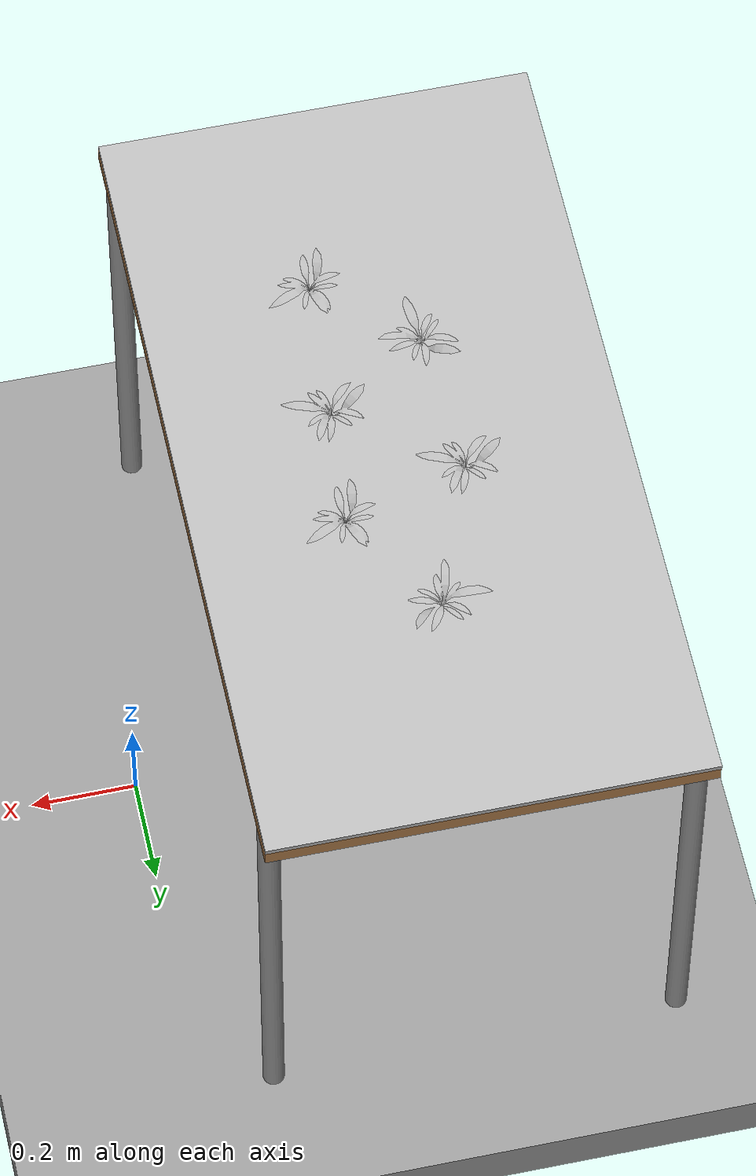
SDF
<sdf version="1.7">
 <world name="default">
  <light name="sun" type="directional">
   <pose>0 0 10 0 -0 0</pose>
   <diffuse>0.8 0.8 0.8 1</diffuse>
   <specular>0.2 0.2 0.2 1</specular>
   <attenuation>
    <range>1000</range>
    <constant>0.9</constant>
    <linear>0.01</linear>
    <quadratic>0.001</quadratic>
   </attenuation>
   <direction>-0.5 0.1 -0.9</direction>
   <spot><inner_angle>0</inner_angle><outer_angle>0</outer_angle><falloff>0</falloff></spot>
  </light>
  <model name="ground_plane">
   <static>1</static>
   <link name="link">
    <collision name="collision">
     <geometry><plane><normal>0 0 1</normal><size>100 100</size></plane></geometry>
     <surface>
      <contact><collide_bitmask>65535</collide_bitmask></contact>
      <friction><ode><mu>100</mu><mu2>50</mu2></ode></friction>
     </surface>
    </collision>
    <visual name="visual">
     <cast_shadows>0</cast_shadows>
     <geometry><plane><normal>0 0 1</normal><size>100 100</size></plane></geometry>
     <material>
      <script><uri>file://media/materials/scripts/gazebo.material</uri><name>Gazebo/Grey</name></script>
     </material>
    </visual>
   </link>
  </model>
  <gravity>0 0 -9.8</gravity>
  <magnetic_field>6e-06 2.3e-05 -4.2e-05</magnetic_field>
  <atmosphere type="adiabatic"/>
  <physics type="ode">
   <max_step_size>0.001</max_step_size>
   <real_time_factor>1</real_time_factor>
   <real_time_update_rate>1000</real_time_update_rate>
  </physics>
  <scene><ambient>0.4 0.4 0.4 1</ambient><background>0.7 0.7 0.7 1</background><shadows>1</shadows></scene>
  <spherical_coordinates>
   <surface_model>EARTH_WGS84</surface_model>
   <latitude_deg>0</latitude_deg>
   <longitude_deg>0</longitude_deg>
   <elevation>0</elevation>
   <heading_deg>0</heading_deg>
  </spherical_coordinates>
  <model name="table">
   <static>1</static>
   <link name="link">
    <collision name="surface">
     <pose>0 0 1 0 -0 0</pose>
     <geometry><box><size>1.5 0.8 0.03</size></box></geometry>
     <surface><friction><ode><mu>0.6</mu><mu2>0.6</mu2></ode></friction></surface>
    </collision>
    <visual name="visual1">
     <pose>0 0 1 0 -0 0</pose>
     <geometry><box><size>1.5 0.8 0.03</size></box></geometry>
     <material>
      <script><uri>file://media/materials/scripts/gazebo.material</uri><name>Gazebo/Wood</name></script>
     </material>
    </visual>
    <collision name="front_left_leg">
     <pose>0.68 0.38 0.5 0 -0 0</pose>
     <geometry><cylinder><radius>0.02</radius><length>1</length></cylinder></geometry>
    </collision>
    <visual name="front_left_leg">
     <pose>0.68 0.38 0.5 0 -0 0</pose>
     <geometry><cylinder><radius>0.02</radius><length>1</length></cylinder></geometry>
     <material>
      <script><uri>file://media/materials/scripts/gazebo.material</uri><name>Gazebo/Grey</name></script>
     </material>
    </visual>
    <collision name="front_right_leg">
     <pose>0.68 -0.38 0.5 0 -0 0</pose>
     <geometry><cylinder><radius>0.02</radius><length>1</length></cylinder></geometry>
    </collision>
    <visual name="front_right_leg">
     <pose>0.68 -0.38 0.5 0 -0 0</pose>
     <geometry><cylinder><radius>0.02</radius><length>1</length></cylinder></geometry>
     <material>
      <script><uri>file://media/materials/scripts/gazebo.material</uri><name>Gazebo/Grey</name></script>
     </material>
    </visual>
    <collision name="back_right_leg">
     <pose>-0.68 -0.38 0.5 0 -0 0</pose>
     <geometry><cylinder><radius>0.02</radius><length>1</length></cylinder></geometry>
    </collision>
    <visual name="back_right_leg">
     <pose>-0.68 -0.38 0.5 0 -0 0</pose>
     <geometry><cylinder><radius>0.02</radius><length>1</length></cylinder></geometry>
     <material>
      <script><uri>file://media/materials/scripts/gazebo.material</uri><name>Gazebo/Grey</name></script>
     </material>
    </visual>
    <collision name="back_left_leg">
     <pose>-0.68 0.38 0.5 0 -0 0</pose>
     <geometry><cylinder><radius>0.02</radius><length>1</length></cylinder></geometry>
    </collision>
    <visual name="back_left_leg">
     <pose>-0.68 0.38 0.5 0 -0 0</pose>
     <geometry><cylinder><radius>0.02</radius><length>1</length></cylinder></geometry>
     <material>
      <script><uri>file://media/materials/scripts/gazebo.material</uri><name>Gazebo/Grey</name></script>
     </material>
    </visual>
   </link>
   <pose>-0.507405 -0 0 0 -0 1.57</pose>
  </model>
  <model name="ground_plane_0">
   <static>1</static>
   <link name="link">
    <collision name="collision">
     <geometry><plane><normal>0 0 1</normal><size>100 100</size></plane></geometry>
     <surface>
      <contact><collide_bitmask>65535</collide_bitmask></contact>
      <friction><ode><mu>100</mu><mu2>50</mu2></ode></friction>
     </surface>
    </collision>
    <visual name="visual">
     <cast_shadows>0</cast_shadows>
     <geometry><plane><normal>0 0 1</normal><size>100 100</size></plane></geometry>
     <material>
      <script><uri>file://media/materials/scripts/gazebo.material</uri><name>Gazebo/Grey</name></script>
     </material>
    </visual>
   </link>
   <pose>1.1453 1.4571 0 0 -0 0</pose>
  </model>
  <model name="grass">
   <static>0</static>
   <link name="link">
    <collision name="collision">
     <geometry><mesh><uri>model://grass/meshes/grass.obj</uri></mesh></geometry>
     <surface><friction><ode><mu>0.2</mu><mu2>0.2</mu2></ode></friction></surface>
    </collision>
    <inertial>
     <mass>1</mass>
     <inertia><ixx>1</ixx><ixy>0</ixy><ixz>0</ixz><iyy>1</iyy><iyz>0</iyz><izz>1</izz></inertia>
    </inertial>
    <visual name="visual_abcedf">
     <geometry><mesh><uri>model://grass/meshes/grass.obj</uri></mesh></geometry>
     <material>
      <script>
       <uri>model://grass/materials/scripts</uri>
       <uri>model://grass/materials/textures</uri>
       <name>grass/Diffuse</name>
      </script>
     </material>
    </visual>
   </link>
   <pose>-0.508321 0.000353 1.02 1e-06 -1e-06 1.57006</pose>
  </model>
  <model name="unknown_weed">
   <static>0</static>
   <link name="link">
    <inertial>
     <mass>0.1</mass>
     <inertia>
      <ixx>6.58333e-05</ixx>
      <ixy>0</ixy>
      <ixz>0</ixz>
      <iyy>6.58333e-05</iyy>
      <iyz>0</iyz>
      <izz>0.000125</izz>
     </inertia>
     <pose>0 0 0.005 0 -0 0</pose>
    </inertial>
    <collision name="collision_leaves">
     <geometry><mesh><uri>model://unknown_weed/meshes/unknown_weed.dae</uri></mesh></geometry>
     <surface><friction><ode><mu>10</mu><mu2>10</mu2></ode></friction></surface>
    </collision>
    <collision name="collision_stem">
     <geometry><cylinder><radius>0.03</radius><length>0.005</length></cylinder></geometry>
     <surface><friction><ode><mu>10</mu><mu2>10</mu2></ode></friction></surface>
    </collision>
    <visual name="visual">
     <geometry><mesh><uri>model://unknown_weed/meshes/unknown_weed.dae</uri></mesh></geometry>
     <material>
      <script>
       <uri>model://unknown_weed/materials/scripts/</uri>
       <uri>model://unknown_weed/materials/textures/</uri>
       <name>unknown_weed_leaf</name>
      </script>
     </material>
    </visual>
   </link>
   <pose>-0.609598 0.068309 1.0275 2e-05 -1.3e-05 -0.48959</pose>
  </model>
  <model name="unknown_weed_0">
   <static>0</static>
   <link name="link">
    <inertial>
     <mass>0.1</mass>
     <inertia>
      <ixx>6.58333e-05</ixx>
      <ixy>0</ixy>
      <ixz>0</ixz>
      <iyy>6.58333e-05</iyy>
      <iyz>0</iyz>
      <izz>0.000125</izz>
     </inertia>
     <pose>0 0 0.005 0 -0 0</pose>
    </inertial>
    <collision name="collision_leaves">
     <geometry><mesh><uri>model://unknown_weed/meshes/unknown_weed.dae</uri></mesh></geometry>
     <surface><friction><ode><mu>10</mu><mu2>10</mu2></ode></friction></surface>
    </collision>
    <collision name="collision_stem">
     <geometry><cylinder><radius>0.03</radius><length>0.005</length></cylinder></geometry>
     <surface><friction><ode><mu>10</mu><mu2>10</mu2></ode></friction></surface>
    </collision>
    <visual name="visual">
     <geometry><mesh><uri>model://unknown_weed/meshes/unknown_weed.dae</uri></mesh></geometry>
     <material>
      <script>
       <uri>model://unknown_weed/materials/scripts/</uri>
       <uri>model://unknown_weed/materials/textures/</uri>
       <name>unknown_weed_leaf</name>
      </script>
     </material>
    </visual>
   </link>
   <pose>-0.418516 -0.35709 1.0275 5.8e-05 1.2e-05 0.284861</pose>
  </model>
  <model name="unknown_weed_1">
   <static>0</static>
   <link name="link">
    <inertial>
     <mass>0.1</mass>
     <inertia>
      <ixx>6.58333e-05</ixx>
      <ixy>0</ixy>
      <ixz>0</ixz>
      <iyy>6.58333e-05</iyy>
      <iyz>0</iyz>
      <izz>0.000125</izz>
     </inertia>
     <pose>0 0 0.005 0 -0 0</pose>
    </inertial>
    <collision name="collision_leaves">
     <geometry><mesh><uri>model://unknown_weed/meshes/unknown_weed.dae</uri></mesh></geometry>
     <surface><friction><ode><mu>10</mu><mu2>10</mu2></ode></friction></surface>
    </collision>
    <collision name="collision_stem">
     <geometry><cylinder><radius>0.03</radius><length>0.005</length></cylinder></geometry>
     <surface><friction><ode><mu>10</mu><mu2>10</mu2></ode></friction></surface>
    </collision>
    <visual name="visual">
     <geometry><mesh><uri>model://unknown_weed/meshes/unknown_weed.dae</uri></mesh></geometry>
     <material>
      <script>
       <uri>model://unknown_weed/materials/scripts/</uri>
       <uri>model://unknown_weed/materials/textures/</uri>
       <name>unknown_weed_leaf</name>
      </script>
     </material>
    </visual>
   </link>
   <pose>-0.378794 0.136727 1.0275 3.5e-05 2e-06 0.342083</pose>
  </model>
  <model name="unknown_weed_2">
   <static>0</static>
   <link name="link">
    <inertial>
     <mass>0.1</mass>
     <inertia>
      <ixx>6.58333e-05</ixx>
      <ixy>0</ixy>
      <ixz>0</ixz>
      <iyy>6.58333e-05</iyy>
      <iyz>0</iyz>
      <izz>0.000125</izz>
     </inertia>
     <pose>0 0 0.005 0 -0 0</pose>
    </inertial>
    <collision name="collision_leaves">
     <geometry><mesh><uri>model://unknown_weed/meshes/unknown_weed.dae</uri></mesh></geometry>
     <surface><friction><ode><mu>10</mu><mu2>10</mu2></ode></friction></surface>
    </collision>
    <collision name="collision_stem">
     <geometry><cylinder><radius>0.03</radius><length>0.005</length></cylinder></geometry>
     <surface><friction><ode><mu>10</mu><mu2>10</mu2></ode></friction></surface>
    </collision>
    <visual name="visual">
     <geometry><mesh><uri>model://unknown_weed/meshes/unknown_weed.dae</uri></mesh></geometry>
     <material>
      <script>
       <uri>model://unknown_weed/materials/scripts/</uri>
       <uri>model://unknown_weed/materials/textures/</uri>
       <name>unknown_weed_leaf</name>
      </script>
     </material>
    </visual>
   </link>
   <pose>-0.40091 -0.0884 1.0275 -0.00016 -0.000157 -0.43306</pose>
  </model>
  <model name="unknown_weed_3">
   <static>0</static>
   <link name="link">
    <inertial>
     <mass>0.1</mass>
     <inertia>
      <ixx>6.58333e-05</ixx>
      <ixy>0</ixy>
      <ixz>0</ixz>
      <iyy>6.58333e-05</iyy>
      <iyz>0</iyz>
      <izz>0.000125</izz>
     </inertia>
     <pose>0 0 0.005 0 -0 0</pose>
    </inertial>
    <collision name="collision_leaves">
     <geometry><mesh><uri>model://unknown_weed/meshes/unknown_weed.dae</uri></mesh></geometry>
     <surface><friction><ode><mu>10</mu><mu2>10</mu2></ode></friction></surface>
    </collision>
    <collision name="collision_stem">
     <geometry><cylinder><radius>0.03</radius><length>0.005</length></cylinder></geometry>
     <surface><friction><ode><mu>10</mu><mu2>10</mu2></ode></friction></surface>
    </collision>
    <visual name="visual">
     <geometry><mesh><uri>model://unknown_weed/meshes/unknown_weed.dae</uri></mesh></geometry>
     <material>
      <script>
       <uri>model://unknown_weed/materials/scripts/</uri>
       <uri>model://unknown_weed/materials/textures/</uri>
       <name>unknown_weed_leaf</name>
      </script>
     </material>
    </visual>
   </link>
   <pose>-0.508018 0.338577 1.02749 5.1e-05 2e-05 2.94915</pose>
  </model>
  <model name="unknown_weed_4">
   <static>0</static>
   <link name="link">
    <inertial>
     <mass>0.1</mass>
     <inertia>
      <ixx>6.58333e-05</ixx>
      <ixy>0</ixy>
      <ixz>0</ixz>
      <iyy>6.58333e-05</iyy>
      <iyz>0</iyz>
      <izz>0.000125</izz>
     </inertia>
     <pose>0 0 0.005 0 -0 0</pose>
    </inertial>
    <collision name="collision_leaves">
     <geometry><mesh><uri>model://unknown_weed/meshes/unknown_weed.dae</uri></mesh></geometry>
     <surface><friction><ode><mu>10</mu><mu2>10</mu2></ode></friction></surface>
    </collision>
    <collision name="collision_stem">
     <geometry><cylinder><radius>0.03</radius><length>0.005</length></cylinder></geometry>
     <surface><friction><ode><mu>10</mu><mu2>10</mu2></ode></friction></surface>
    </collision>
    <visual name="visual">
     <geometry><mesh><uri>model://unknown_weed/meshes/unknown_weed.dae</uri></mesh></geometry>
     <material>
      <script>
       <uri>model://unknown_weed/materials/scripts/</uri>
       <uri>model://unknown_weed/materials/textures/</uri>
       <name>unknown_weed_leaf</name>
      </script>
     </material>
    </visual>
   </link>
   <pose>-0.590744 -0.204441 1.0275 -7.8e-05 -0.000128 -1.59399</pose>
  </model>
 </world>
</sdf>
